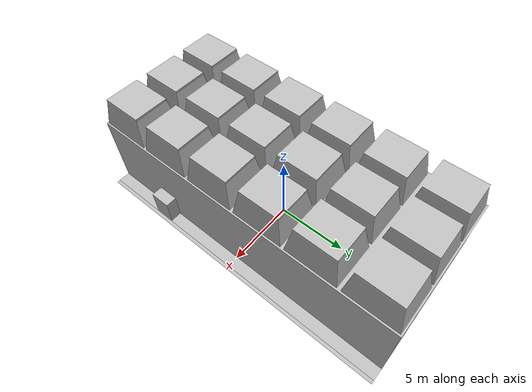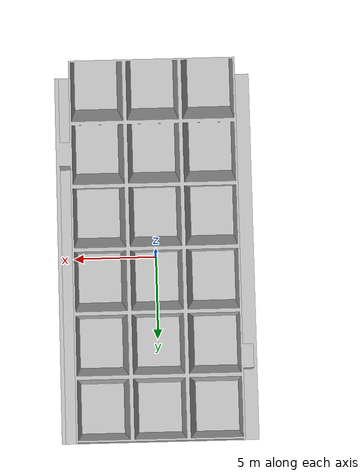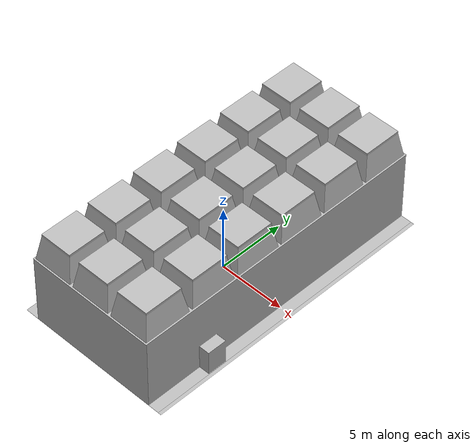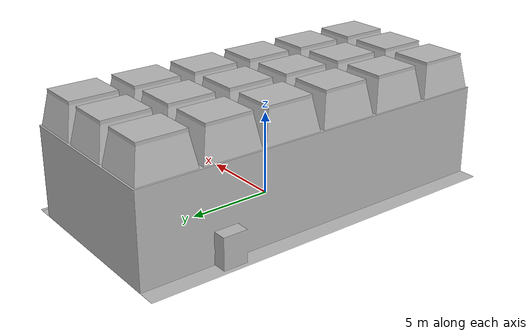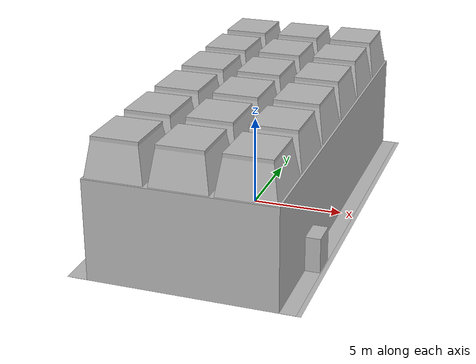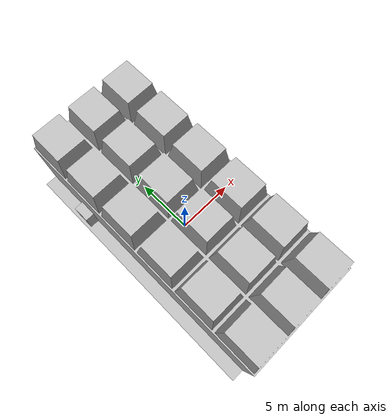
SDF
<sdf version="1.6">
 <world name="default">
  <scene><ambient>0.8 0.8 0.8 1.0</ambient><background>0 0 0</background><grid>false</grid></scene>
  <include><uri>model://perception_env1</uri></include>
  <include><uri>model://perception_floor1</uri><pose>0 0.0 0.01 0 0 0</pose></include>
  <include><uri>model://painting_monalisa</uri><pose>-4.9 0.0 1.46 0 0 0</pose></include>
  <include><uri>model://painting_vangoh</uri><pose>4.808 4.3836 1.46 0 0 -3.118524</pose></include>
  <light name="user_point_light_2" type="point">
   <pose>0.0 8.0 5.0 0 -0 0</pose>
   <diffuse>0.5 0.5 0.5 1</diffuse>
   <specular>0.1 0.1 0.1 1</specular>
   <attenuation>
    <range>20</range>
    <constant>0.2</constant>
    <linear>0.06</linear>
    <quadratic>0.001</quadratic>
   </attenuation>
   <cast_shadows>0</cast_shadows>
   <direction>0 0 -1</direction>
  </light>
  <light name="user_point_light_4" type="point">
   <pose>0.0 -8.0 5.0 0 -0 0</pose>
   <diffuse>0.5 0.5 0.5 1</diffuse>
   <specular>0.1 0.1 0.1 1</specular>
   <attenuation>
    <range>20</range>
    <constant>0.2</constant>
    <linear>0.06</linear>
    <quadratic>0.001</quadratic>
   </attenuation>
   <cast_shadows>0</cast_shadows>
   <direction>0 0 -1</direction>
  </light>
  <plugin name="gazebo_ros_state" filename="libgazebo_ros_state.so">
   <ros><namespace>/gazebo</namespace></ros>
   <update_rate>5.0</update_rate>
  </plugin>
 </world>
</sdf>

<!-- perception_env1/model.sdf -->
<sdf version='1.6'>
  <model name='perception_env1'>
    <link name='link_1'>
         <visual name='visual'>
        <pose frame=''>0 0 0 0 -0 0</pose>
        <geometry>
          <mesh>
            <uri>model://perception_env1/meshes/gallery_room.dae</uri>
            <scale>1.0 1.0 1.0</scale>
          </mesh>
        </geometry>
        <cast_shadows>0</cast_shadows>
        <transparency>0</transparency>
      </visual>
      <collision name='collision'>
        <laser_retro>0</laser_retro>
        <max_contacts>10</max_contacts>
        <pose frame=''>0 0 0 0 -0 0</pose>
        <geometry>
          <mesh>
            <uri>model://perception_env1/meshes/gallery_room_col.stl</uri>
            <scale>1.0 1.0 1.0</scale>
          </mesh>
        </geometry>
     </collision>
    </link>

    <static>1</static>
    <allow_auto_disable>1</allow_auto_disable>
  </model>
</sdf>

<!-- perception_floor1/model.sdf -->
<sdf version='1.6'>
  <model name='perception_floor1'>
    <link name='link_1'>
         <visual name='visual'>
        <pose frame=''>0 0 0 0 -0 0</pose>
        <geometry>
          <mesh>
            <uri>model://perception_floor1/meshes/perception_floor.dae</uri>
            <scale>1.0 1.0 1.0</scale>
          </mesh>
        </geometry>
        <cast_shadows>0</cast_shadows>
        <transparency>0</transparency>
      </visual>

    </link>

    <static>1</static>
    <allow_auto_disable>1</allow_auto_disable>
  </model>
</sdf>

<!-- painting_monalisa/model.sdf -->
<sdf version='1.6'>
  <model name='painting_monalisa'>
    <link name='link_1'>
         <visual name='visual'>
        <pose frame=''>0 0 0 0 -0 0</pose>
        <geometry>
          <mesh>
            <uri>model://painting_monalisa/meshes/monalisa.dae</uri>
            <scale>1.0 1.0 1.0</scale>
          </mesh>
        </geometry>
        <cast_shadows>0</cast_shadows>
        <transparency>0</transparency>
      </visual>
    </link>

    <static>1</static>
    <allow_auto_disable>1</allow_auto_disable>
  </model>
</sdf>

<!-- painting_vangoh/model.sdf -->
<sdf version='1.6'>
  <model name='painting_vangoh'>
    <link name='link_1'>
         <visual name='visual'>
        <pose frame=''>0 0 0 0 -0 0</pose>
        <geometry>
          <mesh>
            <uri>model://painting_vangoh/meshes/vangoh.dae</uri>
            <scale>1.0 1.0 1.0</scale>
          </mesh>
        </geometry>
        <cast_shadows>0</cast_shadows>
        <transparency>0</transparency>
      </visual>
    </link>

    <static>1</static>
    <allow_auto_disable>1</allow_auto_disable>
  </model>
</sdf>
